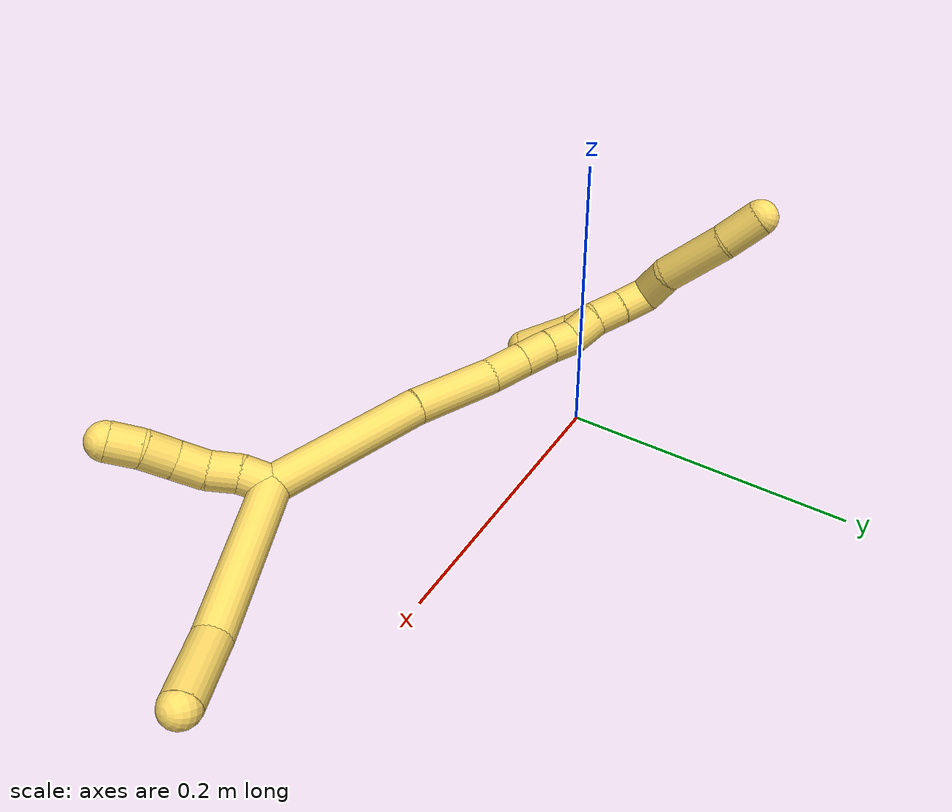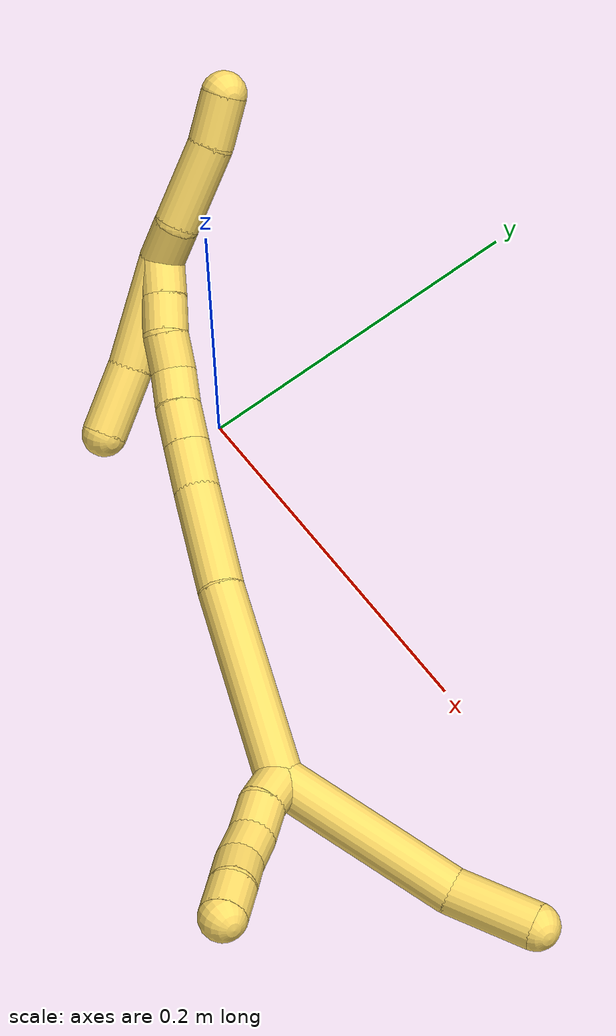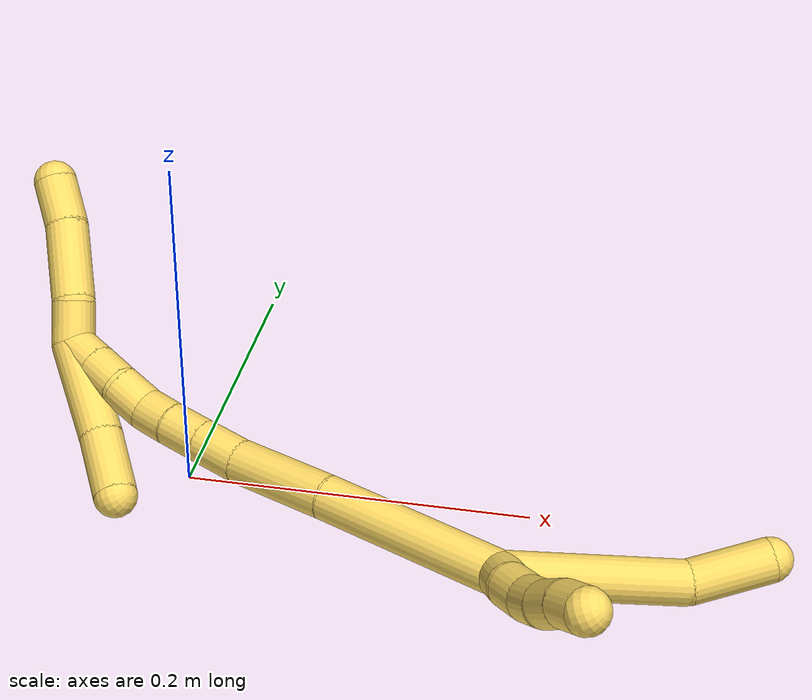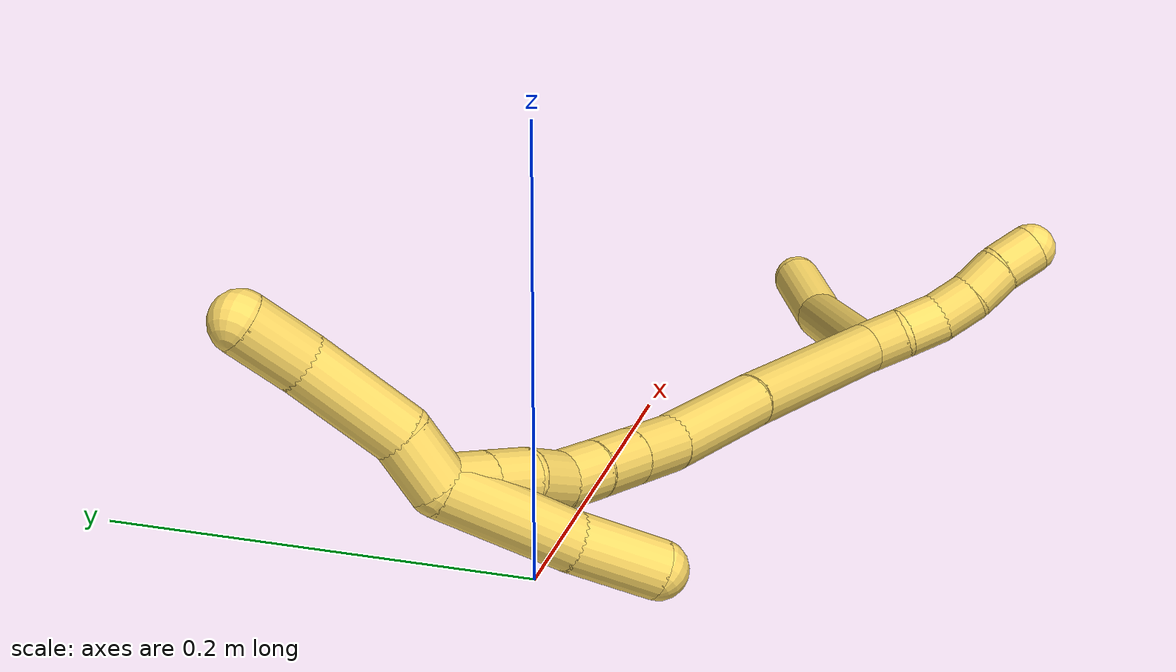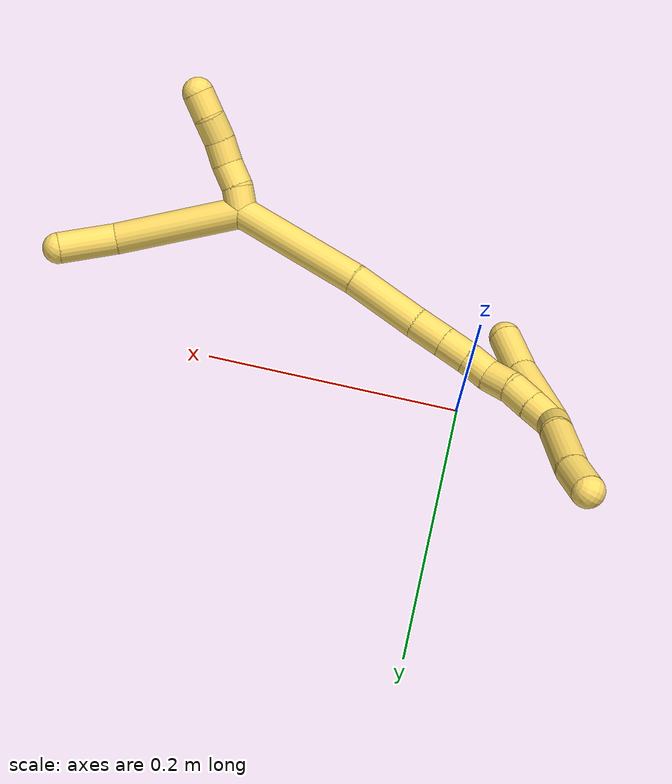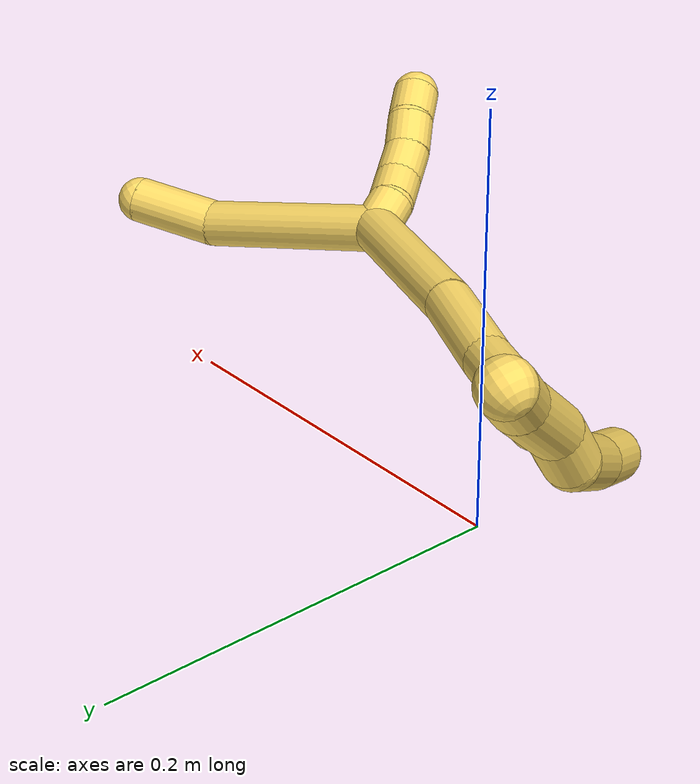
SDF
<sdf version="1.7">
 <world name="default">
  <model name="5">
   <static>0</static>
   <link name="5">
    <collision name="collision-cylinder-e_1_2_8">
     <pose>0.034679 0.017135 0.03414 -0.465167 0.737139 -0.182459</pose>
     <geometry><cylinder><radius>0.0125</radius><length>0.103185</length></cylinder></geometry>
     <surface>
      <friction><ode><mu>1.16</mu><mu2>1.16</mu2><slip1>0</slip1><slip2>0</slip2></ode></friction>
      <contact><ode><kp>1e+06</kp><kd>1</kd><max_vel>0</max_vel><min_depth>0.001</min_depth></ode></contact>
     </surface>
    </collision>
    <visual name="visual-cylinder-e_1_2_8">
     <pose>0.034679 0.017135 0.03414 -0.465167 0.737139 -0.182459</pose>
     <geometry><cylinder><radius>0.0125</radius><length>0.103185</length></cylinder></geometry>
     <material><ambient>1 0.858824 0.4 1</ambient></material>
    </visual>
    <collision name="collision-cylinder-e_2_8_6">
     <pose>0.078703 0.044881 0.086935 -0.517155 0.410674 -0.110064</pose>
     <geometry><cylinder><radius>0.0125</radius><length>0.046815</length></cylinder></geometry>
     <surface>
      <friction><ode><mu>1.16</mu><mu2>1.16</mu2><slip1>0</slip1><slip2>0</slip2></ode></friction>
      <contact><ode><kp>1e+06</kp><kd>1</kd><max_vel>0</max_vel><min_depth>0.001</min_depth></ode></contact>
     </surface>
    </collision>
    <visual name="visual-cylinder-e_2_8_6">
     <pose>0.078703 0.044881 0.086935 -0.517155 0.410674 -0.110064</pose>
     <geometry><cylinder><radius>0.0125</radius><length>0.046815</length></cylinder></geometry>
     <material><ambient>1 0.858824 0.4 1</ambient></material>
    </visual>
    <collision name="collision-cylinder-e_1_2_9">
     <pose>-0.002034 -0.007992 0.005656 0.954921 -0.204831 -0.106249</pose>
     <geometry><cylinder><radius>0.0125</radius><length>0.02</length></cylinder></geometry>
     <surface>
      <friction><ode><mu>1.16</mu><mu2>1.16</mu2><slip1>0</slip1><slip2>0</slip2></ode></friction>
      <contact><ode><kp>1e+06</kp><kd>1</kd><max_vel>0</max_vel><min_depth>0.001</min_depth></ode></contact>
     </surface>
    </collision>
    <visual name="visual-cylinder-e_1_2_9">
     <pose>-0.002034 -0.007992 0.005656 0.954921 -0.204831 -0.106249</pose>
     <geometry><cylinder><radius>0.0125</radius><length>0.02</length></cylinder></geometry>
     <material><ambient>1 0.858824 0.4 1</ambient></material>
    </visual>
    <collision name="collision-cylinder-e_2_9_10">
     <pose>-0.004043 -0.023206 0.018229 0.80694 0.002536 0.001083</pose>
     <geometry><cylinder><radius>0.0125</radius><length>0.02</length></cylinder></geometry>
     <surface>
      <friction><ode><mu>1.16</mu><mu2>1.16</mu2><slip1>0</slip1><slip2>0</slip2></ode></friction>
      <contact><ode><kp>1e+06</kp><kd>1</kd><max_vel>0</max_vel><min_depth>0.001</min_depth></ode></contact>
     </surface>
    </collision>
    <visual name="visual-cylinder-e_2_9_10">
     <pose>-0.004043 -0.023206 0.018229 0.80694 0.002536 0.001083</pose>
     <geometry><cylinder><radius>0.0125</radius><length>0.02</length></cylinder></geometry>
     <material><ambient>1 0.858824 0.4 1</ambient></material>
    </visual>
    <collision name="collision-cylinder-e_3_10_11">
     <pose>-0.006359 -0.037094 0.032223 0.755561 -0.236371 -0.094171</pose>
     <geometry><cylinder><radius>0.0125</radius><length>0.02</length></cylinder></geometry>
     <surface>
      <friction><ode><mu>1.16</mu><mu2>1.16</mu2><slip1>0</slip1><slip2>0</slip2></ode></friction>
      <contact><ode><kp>1e+06</kp><kd>1</kd><max_vel>0</max_vel><min_depth>0.001</min_depth></ode></contact>
     </surface>
    </collision>
    <visual name="visual-cylinder-e_3_10_11">
     <pose>-0.006359 -0.037094 0.032223 0.755561 -0.236371 -0.094171</pose>
     <geometry><cylinder><radius>0.0125</radius><length>0.02</length></cylinder></geometry>
     <material><ambient>1 0.858824 0.4 1</ambient></material>
    </visual>
    <collision name="collision-cylinder-e_4_11_12">
     <pose>-0.011532 -0.048918 0.047385 0.567808 -0.287072 -0.084294</pose>
     <geometry><cylinder><radius>0.0125</radius><length>0.02</length></cylinder></geometry>
     <surface>
      <friction><ode><mu>1.16</mu><mu2>1.16</mu2><slip1>0</slip1><slip2>0</slip2></ode></friction>
      <contact><ode><kp>1e+06</kp><kd>1</kd><max_vel>0</max_vel><min_depth>0.001</min_depth></ode></contact>
     </surface>
    </collision>
    <visual name="visual-cylinder-e_4_11_12">
     <pose>-0.011532 -0.048918 0.047385 0.567808 -0.287072 -0.084294</pose>
     <geometry><cylinder><radius>0.0125</radius><length>0.02</length></cylinder></geometry>
     <material><ambient>1 0.858824 0.4 1</ambient></material>
    </visual>
    <collision name="collision-cylinder-e_5_12_5">
     <pose>-0.015683 -0.060453 0.06306 0.69885 -0.132304 -0.04827</pose>
     <geometry><cylinder><radius>0.0125</radius><length>0.02</length></cylinder></geometry>
     <surface>
      <friction><ode><mu>1.16</mu><mu2>1.16</mu2><slip1>0</slip1><slip2>0</slip2></ode></friction>
      <contact><ode><kp>1e+06</kp><kd>1</kd><max_vel>0</max_vel><min_depth>0.001</min_depth></ode></contact>
     </surface>
    </collision>
    <visual name="visual-cylinder-e_5_12_5">
     <pose>-0.015683 -0.060453 0.06306 0.69885 -0.132304 -0.04827</pose>
     <geometry><cylinder><radius>0.0125</radius><length>0.02</length></cylinder></geometry>
     <material><ambient>1 0.858824 0.4 1</ambient></material>
    </visual>
    <collision name="collision-cylinder-e_1_2_13">
     <pose>-0.026854 0.019043 -0.042184 -2.71756 -0.52575 1.79225</pose>
     <geometry><cylinder><radius>0.0125</radius><length>0.107019</length></cylinder></geometry>
     <surface>
      <friction><ode><mu>1.16</mu><mu2>1.16</mu2><slip1>0</slip1><slip2>0</slip2></ode></friction>
      <contact><ode><kp>1e+06</kp><kd>1</kd><max_vel>0</max_vel><min_depth>0.001</min_depth></ode></contact>
     </surface>
    </collision>
    <visual name="visual-cylinder-e_1_2_13">
     <pose>-0.026854 0.019043 -0.042184 -2.71756 -0.52575 1.79225</pose>
     <geometry><cylinder><radius>0.0125</radius><length>0.107019</length></cylinder></geometry>
     <material><ambient>1 0.858824 0.4 1</ambient></material>
    </visual>
    <collision name="collision-cylinder-e_2_13_14">
     <pose>-0.065982 0.049899 -0.108393 -2.68457 -0.42983 1.50744</pose>
     <geometry><cylinder><radius>0.0125</radius><length>0.058903</length></cylinder></geometry>
     <surface>
      <friction><ode><mu>1.16</mu><mu2>1.16</mu2><slip1>0</slip1><slip2>0</slip2></ode></friction>
      <contact><ode><kp>1e+06</kp><kd>1</kd><max_vel>0</max_vel><min_depth>0.001</min_depth></ode></contact>
     </surface>
    </collision>
    <visual name="visual-cylinder-e_2_13_14">
     <pose>-0.065982 0.049899 -0.108393 -2.68457 -0.42983 1.50744</pose>
     <geometry><cylinder><radius>0.0125</radius><length>0.058903</length></cylinder></geometry>
     <material><ambient>1 0.858824 0.4 1</ambient></material>
    </visual>
    <collision name="collision-cylinder-e_3_14_15">
     <pose>-0.085035 0.067401 -0.142539 -2.62962 -0.528565 1.60418</pose>
     <geometry><cylinder><radius>0.0125</radius><length>0.02689</length></cylinder></geometry>
     <surface>
      <friction><ode><mu>1.16</mu><mu2>1.16</mu2><slip1>0</slip1><slip2>0</slip2></ode></friction>
      <contact><ode><kp>1e+06</kp><kd>1</kd><max_vel>0</max_vel><min_depth>0.001</min_depth></ode></contact>
     </surface>
    </collision>
    <visual name="visual-cylinder-e_3_14_15">
     <pose>-0.085035 0.067401 -0.142539 -2.62962 -0.528565 1.60418</pose>
     <geometry><cylinder><radius>0.0125</radius><length>0.02689</length></cylinder></geometry>
     <material><ambient>1 0.858824 0.4 1</ambient></material>
    </visual>
    <collision name="collision-cylinder-e_4_15_16">
     <pose>-0.097531 0.07799 -0.161266 -2.62387 -0.523436 1.58228</pose>
     <geometry><cylinder><radius>0.0125</radius><length>0.022871</length></cylinder></geometry>
     <surface>
      <friction><ode><mu>1.16</mu><mu2>1.16</mu2><slip1>0</slip1><slip2>0</slip2></ode></friction>
      <contact><ode><kp>1e+06</kp><kd>1</kd><max_vel>0</max_vel><min_depth>0.001</min_depth></ode></contact>
     </surface>
    </collision>
    <visual name="visual-cylinder-e_4_15_16">
     <pose>-0.097531 0.07799 -0.161266 -2.62387 -0.523436 1.58228</pose>
     <geometry><cylinder><radius>0.0125</radius><length>0.022871</length></cylinder></geometry>
     <material><ambient>1 0.858824 0.4 1</ambient></material>
    </visual>
    <collision name="collision-cylinder-e_5_16_17">
     <pose>-0.107809 0.087888 -0.177473 -2.5601 -0.464933 1.3387</pose>
     <geometry><cylinder><radius>0.0125</radius><length>0.020351</length></cylinder></geometry>
     <surface>
      <friction><ode><mu>1.16</mu><mu2>1.16</mu2><slip1>0</slip1><slip2>0</slip2></ode></friction>
      <contact><ode><kp>1e+06</kp><kd>1</kd><max_vel>0</max_vel><min_depth>0.001</min_depth></ode></contact>
     </surface>
    </collision>
    <visual name="visual-cylinder-e_5_16_17">
     <pose>-0.107809 0.087888 -0.177473 -2.5601 -0.464933 1.3387</pose>
     <geometry><cylinder><radius>0.0125</radius><length>0.020351</length></cylinder></geometry>
     <material><ambient>1 0.858824 0.4 1</ambient></material>
    </visual>
    <collision name="collision-cylinder-e_6_17_18">
     <pose>-0.120056 0.097521 -0.191004 -2.47788 -0.795656 1.76794</pose>
     <geometry><cylinder><radius>0.0125</radius><length>0.021514</length></cylinder></geometry>
     <surface>
      <friction><ode><mu>1.16</mu><mu2>1.16</mu2><slip1>0</slip1><slip2>0</slip2></ode></friction>
      <contact><ode><kp>1e+06</kp><kd>1</kd><max_vel>0</max_vel><min_depth>0.001</min_depth></ode></contact>
     </surface>
    </collision>
    <visual name="visual-cylinder-e_6_17_18">
     <pose>-0.120056 0.097521 -0.191004 -2.47788 -0.795656 1.76794</pose>
     <geometry><cylinder><radius>0.0125</radius><length>0.021514</length></cylinder></geometry>
     <material><ambient>1 0.858824 0.4 1</ambient></material>
    </visual>
    <collision name="collision-cylinder-e_7_18_19">
     <pose>-0.133345 0.108173 -0.203402 -2.39257 -0.565473 1.273</pose>
     <geometry><cylinder><radius>0.0125</radius><length>0.020922</length></cylinder></geometry>
     <surface>
      <friction><ode><mu>1.16</mu><mu2>1.16</mu2><slip1>0</slip1><slip2>0</slip2></ode></friction>
      <contact><ode><kp>1e+06</kp><kd>1</kd><max_vel>0</max_vel><min_depth>0.001</min_depth></ode></contact>
     </surface>
    </collision>
    <visual name="visual-cylinder-e_7_18_19">
     <pose>-0.133345 0.108173 -0.203402 -2.39257 -0.565473 1.273</pose>
     <geometry><cylinder><radius>0.0125</radius><length>0.020922</length></cylinder></geometry>
     <material><ambient>1 0.858824 0.4 1</ambient></material>
    </visual>
    <collision name="collision-cylinder-e_8_19_1">
     <pose>-0.144916 0.120128 -0.216579 -2.41679 -0.587441 1.34675</pose>
     <geometry><cylinder><radius>0.0125</radius><length>0.021531</length></cylinder></geometry>
     <surface>
      <friction><ode><mu>1.16</mu><mu2>1.16</mu2><slip1>0</slip1><slip2>0</slip2></ode></friction>
      <contact><ode><kp>1e+06</kp><kd>1</kd><max_vel>0</max_vel><min_depth>0.001</min_depth></ode></contact>
     </surface>
    </collision>
    <visual name="visual-cylinder-e_8_19_1">
     <pose>-0.144916 0.120128 -0.216579 -2.41679 -0.587441 1.34675</pose>
     <geometry><cylinder><radius>0.0125</radius><length>0.021531</length></cylinder></geometry>
     <material><ambient>1 0.858824 0.4 1</ambient></material>
    </visual>
    <collision name="collision-cylinder-e_1_1_20">
     <pose>-0.159621 0.134051 -0.21959 -1.137 -0.782059 0.515051</pose>
     <geometry><cylinder><radius>0.0125</radius><length>0.024798</length></cylinder></geometry>
     <surface>
      <friction><ode><mu>1.16</mu><mu2>1.16</mu2><slip1>0</slip1><slip2>0</slip2></ode></friction>
      <contact><ode><kp>1e+06</kp><kd>1</kd><max_vel>0</max_vel><min_depth>0.001</min_depth></ode></contact>
     </surface>
    </collision>
    <visual name="visual-cylinder-e_1_1_20">
     <pose>-0.159621 0.134051 -0.21959 -1.137 -0.782059 0.515051</pose>
     <geometry><cylinder><radius>0.0125</radius><length>0.024798</length></cylinder></geometry>
     <material><ambient>1 0.858824 0.4 1</ambient></material>
    </visual>
    <collision name="collision-cylinder-e_2_20_21">
     <pose>-0.182804 0.160542 -0.214721 -1.50757 -0.661717 0.623805</pose>
     <geometry><cylinder><radius>0.0125</radius><length>0.047016</length></cylinder></geometry>
     <surface>
      <friction><ode><mu>1.16</mu><mu2>1.16</mu2><slip1>0</slip1><slip2>0</slip2></ode></friction>
      <contact><ode><kp>1e+06</kp><kd>1</kd><max_vel>0</max_vel><min_depth>0.001</min_depth></ode></contact>
     </surface>
    </collision>
    <visual name="visual-cylinder-e_2_20_21">
     <pose>-0.182804 0.160542 -0.214721 -1.50757 -0.661717 0.623805</pose>
     <geometry><cylinder><radius>0.0125</radius><length>0.047016</length></cylinder></geometry>
     <material><ambient>1 0.858824 0.4 1</ambient></material>
    </visual>
    <collision name="collision-cylinder-e_3_21_4">
     <pose>-0.206992 0.189193 -0.214466 -1.661 -0.763344 0.827827</pose>
     <geometry><cylinder><radius>0.0125</radius><length>0.028186</length></cylinder></geometry>
     <surface>
      <friction><ode><mu>1.16</mu><mu2>1.16</mu2><slip1>0</slip1><slip2>0</slip2></ode></friction>
      <contact><ode><kp>1e+06</kp><kd>1</kd><max_vel>0</max_vel><min_depth>0.001</min_depth></ode></contact>
     </surface>
    </collision>
    <visual name="visual-cylinder-e_3_21_4">
     <pose>-0.206992 0.189193 -0.214466 -1.661 -0.763344 0.827827</pose>
     <geometry><cylinder><radius>0.0125</radius><length>0.028186</length></cylinder></geometry>
     <material><ambient>1 0.858824 0.4 1</ambient></material>
    </visual>
    <collision name="collision-cylinder-e_1_1_22">
     <pose>-0.132701 0.102314 -0.217449 1.32982 0.639187 0.507718</pose>
     <geometry><cylinder><radius>0.0125</radius><length>0.060957</length></cylinder></geometry>
     <surface>
      <friction><ode><mu>1.16</mu><mu2>1.16</mu2><slip1>0</slip1><slip2>0</slip2></ode></friction>
      <contact><ode><kp>1e+06</kp><kd>1</kd><max_vel>0</max_vel><min_depth>0.001</min_depth></ode></contact>
     </surface>
    </collision>
    <visual name="visual-cylinder-e_1_1_22">
     <pose>-0.132701 0.102314 -0.217449 1.32982 0.639187 0.507718</pose>
     <geometry><cylinder><radius>0.0125</radius><length>0.060957</length></cylinder></geometry>
     <material><ambient>1 0.858824 0.4 1</ambient></material>
    </visual>
    <collision name="collision-cylinder-e_2_22_3">
     <pose>-0.104805 0.062143 -0.207462 1.32323 0.520849 0.409199</pose>
     <geometry><cylinder><radius>0.0125</radius><length>0.039043</length></cylinder></geometry>
     <surface>
      <friction><ode><mu>1.16</mu><mu2>1.16</mu2><slip1>0</slip1><slip2>0</slip2></ode></friction>
      <contact><ode><kp>1e+06</kp><kd>1</kd><max_vel>0</max_vel><min_depth>0.001</min_depth></ode></contact>
     </surface>
    </collision>
    <visual name="visual-cylinder-e_2_22_3">
     <pose>-0.104805 0.062143 -0.207462 1.32323 0.520849 0.409199</pose>
     <geometry><cylinder><radius>0.0125</radius><length>0.039043</length></cylinder></geometry>
     <material><ambient>1 0.858824 0.4 1</ambient></material>
    </visual>
    <collision name="collision-sphere-3">
     <pose>-0.095091 0.045727 -0.203313 0 -0 0</pose>
     <geometry><sphere><radius>0.0125</radius></sphere></geometry>
     <surface>
      <friction><ode><mu>1.16</mu><mu2>1.16</mu2><slip1>0</slip1><slip2>0</slip2></ode></friction>
      <contact><ode><kp>1e+06</kp><kd>1</kd><max_vel>0</max_vel><min_depth>0.001</min_depth></ode></contact>
     </surface>
    </collision>
    <visual name="visual-sphere-3">
     <pose>-0.095091 0.045727 -0.203313 0 -0 0</pose>
     <geometry><sphere><radius>0.0125</radius></sphere></geometry>
     <material><ambient>1 0.858824 0.4 1</ambient></material>
    </visual>
    <collision name="collision-sphere-22">
     <pose>-0.114519 0.07856 -0.211612 0 -0 0</pose>
     <geometry><sphere><radius>0.0125</radius></sphere></geometry>
     <surface>
      <friction><ode><mu>1.16</mu><mu2>1.16</mu2><slip1>0</slip1><slip2>0</slip2></ode></friction>
      <contact><ode><kp>1e+06</kp><kd>1</kd><max_vel>0</max_vel><min_depth>0.001</min_depth></ode></contact>
     </surface>
    </collision>
    <visual name="visual-sphere-22">
     <pose>-0.114519 0.07856 -0.211612 0 -0 0</pose>
     <geometry><sphere><radius>0.0125</radius></sphere></geometry>
     <material><ambient>1 0.858824 0.4 1</ambient></material>
    </visual>
    <collision name="collision-sphere-4">
     <pose>-0.216735 0.199334 -0.215384 0 -0 0</pose>
     <geometry><sphere><radius>0.0125</radius></sphere></geometry>
     <surface>
      <friction><ode><mu>1.16</mu><mu2>1.16</mu2><slip1>0</slip1><slip2>0</slip2></ode></friction>
      <contact><ode><kp>1e+06</kp><kd>1</kd><max_vel>0</max_vel><min_depth>0.001</min_depth></ode></contact>
     </surface>
    </collision>
    <visual name="visual-sphere-4">
     <pose>-0.216735 0.199334 -0.215384 0 -0 0</pose>
     <geometry><sphere><radius>0.0125</radius></sphere></geometry>
     <material><ambient>1 0.858824 0.4 1</ambient></material>
    </visual>
    <collision name="collision-sphere-21">
     <pose>-0.197249 0.179052 -0.213549 0 -0 0</pose>
     <geometry><sphere><radius>0.0125</radius></sphere></geometry>
     <surface>
      <friction><ode><mu>1.16</mu><mu2>1.16</mu2><slip1>0</slip1><slip2>0</slip2></ode></friction>
      <contact><ode><kp>1e+06</kp><kd>1</kd><max_vel>0</max_vel><min_depth>0.001</min_depth></ode></contact>
     </surface>
    </collision>
    <visual name="visual-sphere-21">
     <pose>-0.197249 0.179052 -0.213549 0 -0 0</pose>
     <geometry><sphere><radius>0.0125</radius></sphere></geometry>
     <material><ambient>1 0.858824 0.4 1</ambient></material>
    </visual>
    <collision name="collision-sphere-20">
     <pose>-0.168359 0.142033 -0.215893 0 -0 0</pose>
     <geometry><sphere><radius>0.0125</radius></sphere></geometry>
     <surface>
      <friction><ode><mu>1.16</mu><mu2>1.16</mu2><slip1>0</slip1><slip2>0</slip2></ode></friction>
      <contact><ode><kp>1e+06</kp><kd>1</kd><max_vel>0</max_vel><min_depth>0.001</min_depth></ode></contact>
     </surface>
    </collision>
    <visual name="visual-sphere-20">
     <pose>-0.168359 0.142033 -0.215893 0 -0 0</pose>
     <geometry><sphere><radius>0.0125</radius></sphere></geometry>
     <material><ambient>1 0.858824 0.4 1</ambient></material>
    </visual>
    <collision name="collision-sphere-11">
     <pose>-0.008701 -0.04376 0.039299 0 -0 0</pose>
     <geometry><sphere><radius>0.0125</radius></sphere></geometry>
     <surface>
      <friction><ode><mu>1.16</mu><mu2>1.16</mu2><slip1>0</slip1><slip2>0</slip2></ode></friction>
      <contact><ode><kp>1e+06</kp><kd>1</kd><max_vel>0</max_vel><min_depth>0.001</min_depth></ode></contact>
     </surface>
    </collision>
    <visual name="visual-sphere-11">
     <pose>-0.008701 -0.04376 0.039299 0 -0 0</pose>
     <geometry><sphere><radius>0.0125</radius></sphere></geometry>
     <material><ambient>1 0.858824 0.4 1</ambient></material>
    </visual>
    <collision name="collision-sphere-10">
     <pose>-0.004017 -0.030428 0.025146 0 -0 0</pose>
     <geometry><sphere><radius>0.0125</radius></sphere></geometry>
     <surface>
      <friction><ode><mu>1.16</mu><mu2>1.16</mu2><slip1>0</slip1><slip2>0</slip2></ode></friction>
      <contact><ode><kp>1e+06</kp><kd>1</kd><max_vel>0</max_vel><min_depth>0.001</min_depth></ode></contact>
     </surface>
    </collision>
    <visual name="visual-sphere-10">
     <pose>-0.004017 -0.030428 0.025146 0 -0 0</pose>
     <geometry><sphere><radius>0.0125</radius></sphere></geometry>
     <material><ambient>1 0.858824 0.4 1</ambient></material>
    </visual>
    <collision name="collision-sphere-6">
     <pose>0.088048 0.055491 0.10559 0 -0 0</pose>
     <geometry><sphere><radius>0.0125</radius></sphere></geometry>
     <surface>
      <friction><ode><mu>1.16</mu><mu2>1.16</mu2><slip1>0</slip1><slip2>0</slip2></ode></friction>
      <contact><ode><kp>1e+06</kp><kd>1</kd><max_vel>0</max_vel><min_depth>0.001</min_depth></ode></contact>
     </surface>
    </collision>
    <visual name="visual-sphere-6">
     <pose>0.088048 0.055491 0.10559 0 -0 0</pose>
     <geometry><sphere><radius>0.0125</radius></sphere></geometry>
     <material><ambient>1 0.858824 0.4 1</ambient></material>
    </visual>
    <collision name="collision-sphere-9">
     <pose>-0.004068 -0.015984 0.011312 0 -0 0</pose>
     <geometry><sphere><radius>0.0125</radius></sphere></geometry>
     <surface>
      <friction><ode><mu>1.16</mu><mu2>1.16</mu2><slip1>0</slip1><slip2>0</slip2></ode></friction>
      <contact><ode><kp>1e+06</kp><kd>1</kd><max_vel>0</max_vel><min_depth>0.001</min_depth></ode></contact>
     </surface>
    </collision>
    <visual name="visual-sphere-9">
     <pose>-0.004068 -0.015984 0.011312 0 -0 0</pose>
     <geometry><sphere><radius>0.0125</radius></sphere></geometry>
     <material><ambient>1 0.858824 0.4 1</ambient></material>
    </visual>
    <collision name="collision-sphere-2">
     <geometry><sphere><radius>0.0125</radius></sphere></geometry>
     <surface>
      <friction><ode><mu>1.16</mu><mu2>1.16</mu2><slip1>0</slip1><slip2>0</slip2></ode></friction>
      <contact><ode><kp>1e+06</kp><kd>1</kd><max_vel>0</max_vel><min_depth>0.001</min_depth></ode></contact>
     </surface>
    </collision>
    <visual name="visual-sphere-2">
     <geometry><sphere><radius>0.0125</radius></sphere></geometry>
     <material><ambient>1 0.858824 0.4 1</ambient></material>
    </visual>
    <collision name="collision-sphere-19">
     <pose>-0.13895 0.114187 -0.20987 0 -0 0</pose>
     <geometry><sphere><radius>0.0125</radius></sphere></geometry>
     <surface>
      <friction><ode><mu>1.16</mu><mu2>1.16</mu2><slip1>0</slip1><slip2>0</slip2></ode></friction>
      <contact><ode><kp>1e+06</kp><kd>1</kd><max_vel>0</max_vel><min_depth>0.001</min_depth></ode></contact>
     </surface>
    </collision>
    <visual name="visual-sphere-19">
     <pose>-0.13895 0.114187 -0.20987 0 -0 0</pose>
     <geometry><sphere><radius>0.0125</radius></sphere></geometry>
     <material><ambient>1 0.858824 0.4 1</ambient></material>
    </visual>
    <collision name="collision-sphere-8">
     <pose>0.069358 0.03427 0.06828 0 -0 0</pose>
     <geometry><sphere><radius>0.0125</radius></sphere></geometry>
     <surface>
      <friction><ode><mu>1.16</mu><mu2>1.16</mu2><slip1>0</slip1><slip2>0</slip2></ode></friction>
      <contact><ode><kp>1e+06</kp><kd>1</kd><max_vel>0</max_vel><min_depth>0.001</min_depth></ode></contact>
     </surface>
    </collision>
    <visual name="visual-sphere-8">
     <pose>0.069358 0.03427 0.06828 0 -0 0</pose>
     <geometry><sphere><radius>0.0125</radius></sphere></geometry>
     <material><ambient>1 0.858824 0.4 1</ambient></material>
    </visual>
    <collision name="collision-sphere-12">
     <pose>-0.014364 -0.054076 0.055471 0 -0 0</pose>
     <geometry><sphere><radius>0.0125</radius></sphere></geometry>
     <surface>
      <friction><ode><mu>1.16</mu><mu2>1.16</mu2><slip1>0</slip1><slip2>0</slip2></ode></friction>
      <contact><ode><kp>1e+06</kp><kd>1</kd><max_vel>0</max_vel><min_depth>0.001</min_depth></ode></contact>
     </surface>
    </collision>
    <visual name="visual-sphere-12">
     <pose>-0.014364 -0.054076 0.055471 0 -0 0</pose>
     <geometry><sphere><radius>0.0125</radius></sphere></geometry>
     <material><ambient>1 0.858824 0.4 1</ambient></material>
    </visual>
    <collision name="collision-sphere-5">
     <pose>-0.017002 -0.06683 0.070649 0 -0 0</pose>
     <geometry><sphere><radius>0.0125</radius></sphere></geometry>
     <surface>
      <friction><ode><mu>1.16</mu><mu2>1.16</mu2><slip1>0</slip1><slip2>0</slip2></ode></friction>
      <contact><ode><kp>1e+06</kp><kd>1</kd><max_vel>0</max_vel><min_depth>0.001</min_depth></ode></contact>
     </surface>
    </collision>
    <visual name="visual-sphere-5">
     <pose>-0.017002 -0.06683 0.070649 0 -0 0</pose>
     <geometry><sphere><radius>0.0125</radius></sphere></geometry>
     <material><ambient>1 0.858824 0.4 1</ambient></material>
    </visual>
    <collision name="collision-sphere-13">
     <pose>-0.053709 0.038085 -0.084368 0 -0 0</pose>
     <geometry><sphere><radius>0.0125</radius></sphere></geometry>
     <surface>
      <friction><ode><mu>1.16</mu><mu2>1.16</mu2><slip1>0</slip1><slip2>0</slip2></ode></friction>
      <contact><ode><kp>1e+06</kp><kd>1</kd><max_vel>0</max_vel><min_depth>0.001</min_depth></ode></contact>
     </surface>
    </collision>
    <visual name="visual-sphere-13">
     <pose>-0.053709 0.038085 -0.084368 0 -0 0</pose>
     <geometry><sphere><radius>0.0125</radius></sphere></geometry>
     <material><ambient>1 0.858824 0.4 1</ambient></material>
    </visual>
    <collision name="collision-sphere-14">
     <pose>-0.078254 0.061713 -0.132417 0 -0 0</pose>
     <geometry><sphere><radius>0.0125</radius></sphere></geometry>
     <surface>
      <friction><ode><mu>1.16</mu><mu2>1.16</mu2><slip1>0</slip1><slip2>0</slip2></ode></friction>
      <contact><ode><kp>1e+06</kp><kd>1</kd><max_vel>0</max_vel><min_depth>0.001</min_depth></ode></contact>
     </surface>
    </collision>
    <visual name="visual-sphere-14">
     <pose>-0.078254 0.061713 -0.132417 0 -0 0</pose>
     <geometry><sphere><radius>0.0125</radius></sphere></geometry>
     <material><ambient>1 0.858824 0.4 1</ambient></material>
    </visual>
    <collision name="collision-sphere-15">
     <pose>-0.091815 0.073089 -0.15266 0 -0 0</pose>
     <geometry><sphere><radius>0.0125</radius></sphere></geometry>
     <surface>
      <friction><ode><mu>1.16</mu><mu2>1.16</mu2><slip1>0</slip1><slip2>0</slip2></ode></friction>
      <contact><ode><kp>1e+06</kp><kd>1</kd><max_vel>0</max_vel><min_depth>0.001</min_depth></ode></contact>
     </surface>
    </collision>
    <visual name="visual-sphere-15">
     <pose>-0.091815 0.073089 -0.15266 0 -0 0</pose>
     <geometry><sphere><radius>0.0125</radius></sphere></geometry>
     <material><ambient>1 0.858824 0.4 1</ambient></material>
    </visual>
    <collision name="collision-sphere-16">
     <pose>-0.103247 0.082892 -0.169873 0 -0 0</pose>
     <geometry><sphere><radius>0.0125</radius></sphere></geometry>
     <surface>
      <friction><ode><mu>1.16</mu><mu2>1.16</mu2><slip1>0</slip1><slip2>0</slip2></ode></friction>
      <contact><ode><kp>1e+06</kp><kd>1</kd><max_vel>0</max_vel><min_depth>0.001</min_depth></ode></contact>
     </surface>
    </collision>
    <visual name="visual-sphere-16">
     <pose>-0.103247 0.082892 -0.169873 0 -0 0</pose>
     <geometry><sphere><radius>0.0125</radius></sphere></geometry>
     <material><ambient>1 0.858824 0.4 1</ambient></material>
    </visual>
    <collision name="collision-sphere-17">
     <pose>-0.112372 0.092884 -0.185074 0 -0 0</pose>
     <geometry><sphere><radius>0.0125</radius></sphere></geometry>
     <surface>
      <friction><ode><mu>1.16</mu><mu2>1.16</mu2><slip1>0</slip1><slip2>0</slip2></ode></friction>
      <contact><ode><kp>1e+06</kp><kd>1</kd><max_vel>0</max_vel><min_depth>0.001</min_depth></ode></contact>
     </surface>
    </collision>
    <visual name="visual-sphere-17">
     <pose>-0.112372 0.092884 -0.185074 0 -0 0</pose>
     <geometry><sphere><radius>0.0125</radius></sphere></geometry>
     <material><ambient>1 0.858824 0.4 1</ambient></material>
    </visual>
    <collision name="collision-sphere-18">
     <pose>-0.12774 0.102159 -0.196934 0 -0 0</pose>
     <geometry><sphere><radius>0.0125</radius></sphere></geometry>
     <surface>
      <friction><ode><mu>1.16</mu><mu2>1.16</mu2><slip1>0</slip1><slip2>0</slip2></ode></friction>
      <contact><ode><kp>1e+06</kp><kd>1</kd><max_vel>0</max_vel><min_depth>0.001</min_depth></ode></contact>
     </surface>
    </collision>
    <visual name="visual-sphere-18">
     <pose>-0.12774 0.102159 -0.196934 0 -0 0</pose>
     <geometry><sphere><radius>0.0125</radius></sphere></geometry>
     <material><ambient>1 0.858824 0.4 1</ambient></material>
    </visual>
    <collision name="collision-sphere-1">
     <pose>-0.150883 0.126069 -0.223287 0 -0 0</pose>
     <geometry><sphere><radius>0.0125</radius></sphere></geometry>
     <surface>
      <friction><ode><mu>1.16</mu><mu2>1.16</mu2><slip1>0</slip1><slip2>0</slip2></ode></friction>
      <contact><ode><kp>1e+06</kp><kd>1</kd><max_vel>0</max_vel><min_depth>0.001</min_depth></ode></contact>
     </surface>
    </collision>
    <visual name="visual-sphere-1">
     <pose>-0.150883 0.126069 -0.223287 0 -0 0</pose>
     <geometry><sphere><radius>0.0125</radius></sphere></geometry>
     <material><ambient>1 0.858824 0.4 1</ambient></material>
    </visual>
    <inertial>
     <pose>-0.061417 0.056658 -0.089436 0 -0 0</pose>
     <mass>0.75</mass>
     <inertia><ixx>0.00021</ixx><ixy>0</ixy><ixz>0</ixz><iyy>0.0003</iyy><iyz>0</iyz><izz>-7.9e-05</izz></inertia>
    </inertial>
   </link>
   <pose>0.19862 -0.108663 0.043486 0.238983 1.01539 0.199846</pose>
  </model>
 </world>
</sdf>
